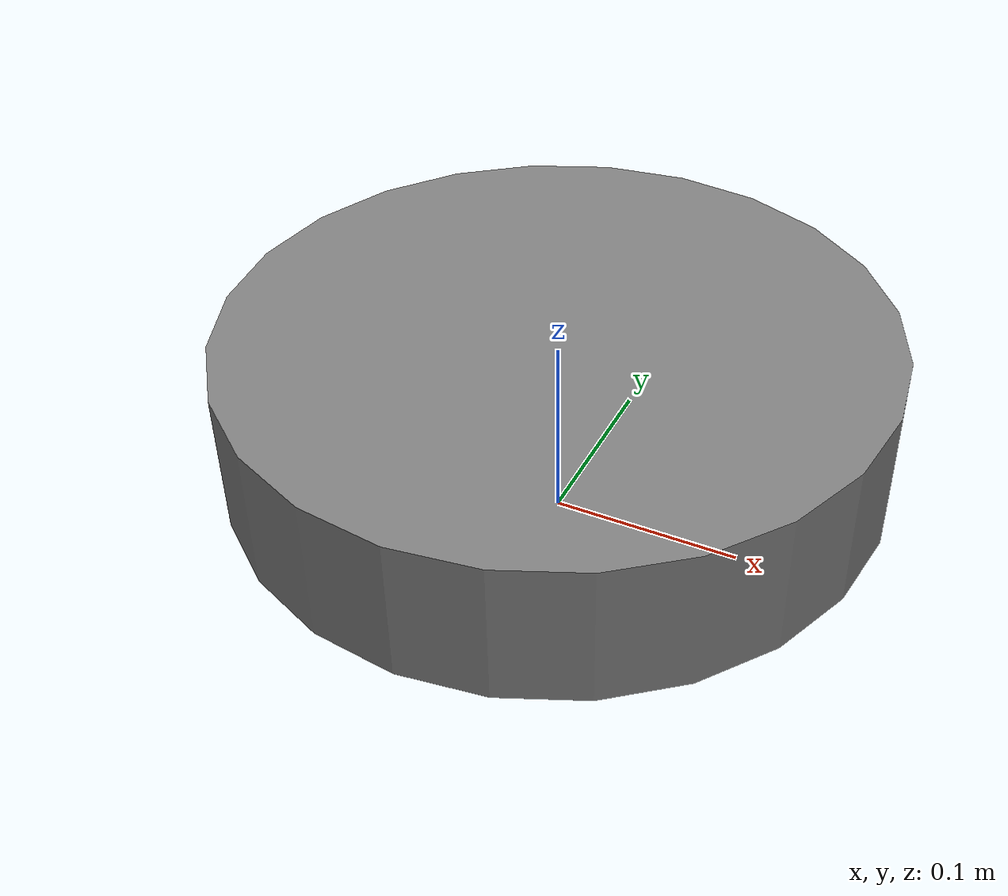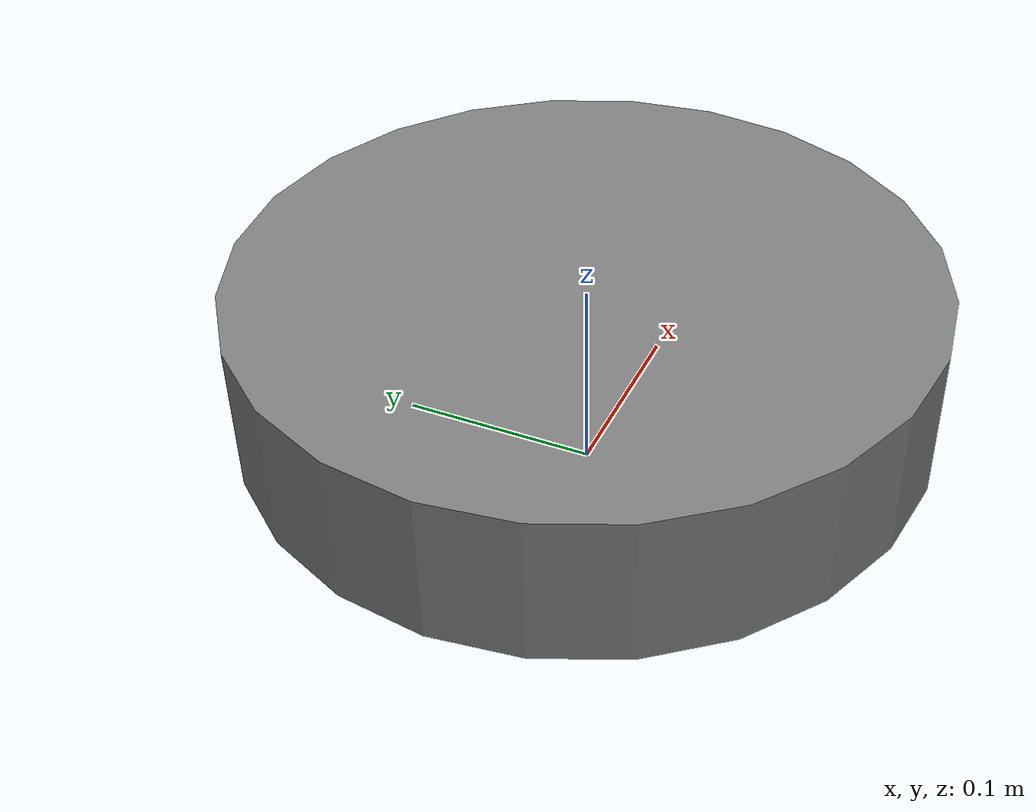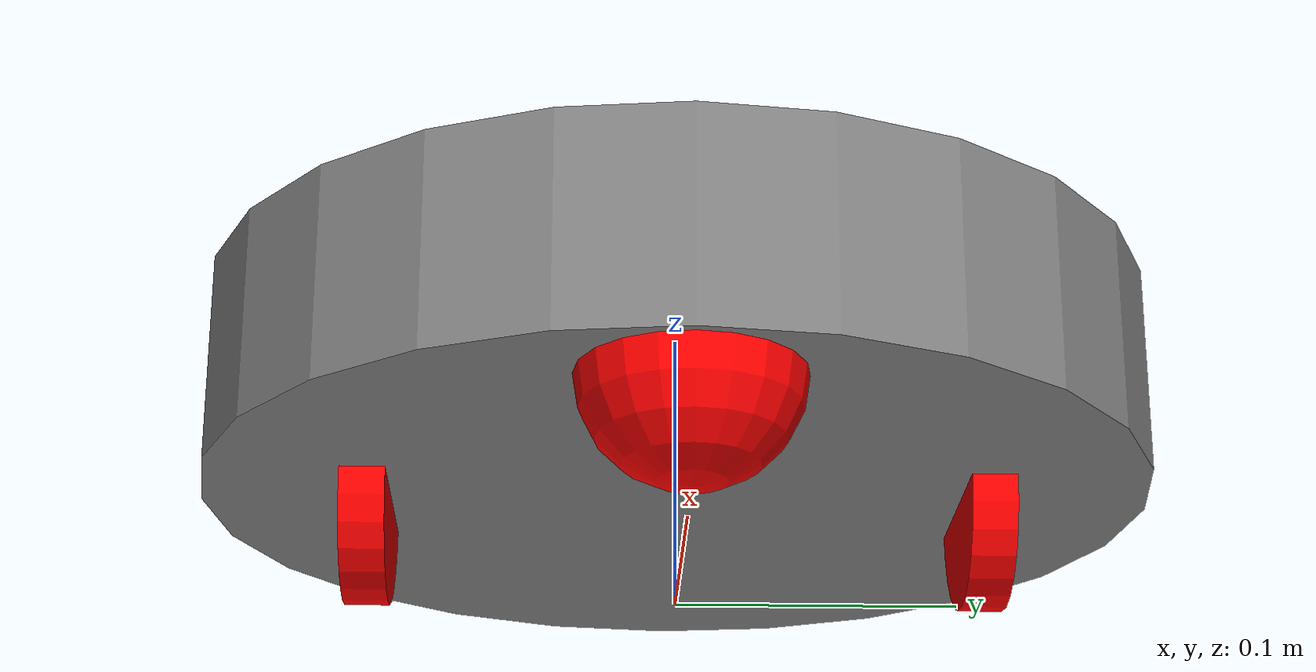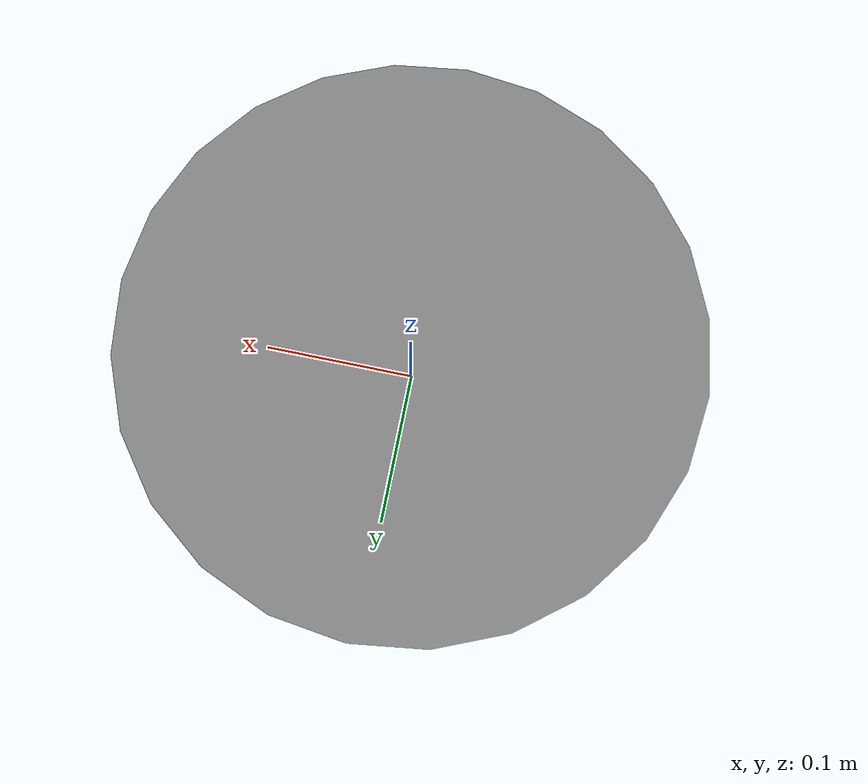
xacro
<?xml version="1.0"?>
<robot xmlns:xacro="http://www.ros.org/wiki/xacro" name="roomba_891">

    <link name="world"></link>

    <xacro:include filename="drivebase.xacro"/>

    <joint name="base_joint" type="fixed">
        <origin xyz="0.0 0.0 ${wheel_radius}" rpy="0.0 0.0 0.0"/>
        <parent link="world"/>
        <child link="chassis_link"/>
    </joint>
</robot>

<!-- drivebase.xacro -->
<robot xmlns:xacro="http://www.ros.org/wiki/xacro">
    <xacro:include filename="dimensions.xacro"/>
    <xacro:include filename="materials.xacro"/>
    <xacro:include filename="macros.xacro"/>
    <xacro:include filename="gazebo.xacro"/>

    <link name="chassis_link">
        <visual>
            <origin xyz="0.0 0.0 0.0375"/>
            <geometry>
                <cylinder radius="${chassis_radius}" length="${chassis_height}"/>
            </geometry>
            <material name="grey"/>
        </visual>
        <collision>
            <origin xyz="0.0 0.0 0.0375"/>
            <geometry>
                <cylinder radius="${chassis_radius}" length="${chassis_height}"/>
            </geometry>
        </collision>
        <inertial>
            <mass value="2.95"/>
            <xacro:solid_cylinder_inertia m="2.95" r="${chassis_radius}" h="${chassis_height}"/>
        </inertial>
    </link>

    <link name="left_wheel">
        <visual>
            <origin xyz="0.0 0.0 0.0"/>
            <geometry>
                <cylinder radius="${wheel_radius}" length="${wheel_thickness}"/>
            </geometry>
            <material name="red"/>
        </visual>
        <collision>
            <geometry>
                <cylinder radius="${wheel_radius}" length="${wheel_thickness}"/>
            </geometry>
        </collision>
        <inertial>
            <mass value="0.226796"/>
            <xacro:solid_cylinder_inertia m="0.226796" r="${wheel_radius}" h="${wheel_thickness}"/>
        </inertial>
    </link>

    <link name="right_wheel">
        <visual>
            <origin xyz="0.0 0.0 0.0"/>
            <geometry>
                <cylinder radius="${wheel_radius}" length="${wheel_thickness}"/>
            </geometry>
            <material name="red"/>
        </visual>
        <collision>
            <geometry>
                <cylinder radius="${wheel_radius}" length="${wheel_thickness}"/>
            </geometry>
        </collision>
        <inertial>
            <mass value="0.226796"/>
            <xacro:solid_cylinder_inertia m="0.226796" r="${wheel_radius}" h="${wheel_thickness}"/>
        </inertial>
    </link>

    <link name="caster_wheel">
        <visual>
            <origin xyz="0.0 0.0 0.0"/>
            <geometry>
                <sphere radius="${caster_radius}"/>
            </geometry>
            <material name="red"/>
        </visual>
        <collision>
            <geometry>
                <sphere radius="${caster_radius}"/>
            </geometry>
        </collision>
        <inertial>
            <mass value="0.05"/>
            <xacro:solid_sphere_inertia m="0.05" r="${caster_radius}"/>
        </inertial>
    </link>

    <joint name="caster_joint" type="continuous">
        <origin xyz="0.129 0.0 0.0" rpy="0.0 0.0 0.0"/>

        <parent link="chassis_link"/>
        <child link="caster_wheel"/>

        <axis xyz="0.0 1.0 0.0"/>
    </joint>

    <joint name="left_wheel_joint" type="continuous">
        <origin xyz="0.0 ${wheel_offset} 0.0" rpy="${pi/2} 0.0 0.0"/>
        <parent link="chassis_link"/>
        <child link="left_wheel"/>
        <axis xyz="0.0 0.0 -1.0"/>
    </joint>

    <joint name="right_wheel_joint" type="continuous">
        <origin xyz="0.0 -${wheel_offset} 0.0" rpy="${pi/2} 0.0 0.0"/>
        <parent link="chassis_link"/>
        <child link="right_wheel"/>
        <axis xyz="0.0 0.0 -1.0"/>
    </joint>
</robot>

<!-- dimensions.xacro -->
<robot xmlns:xacro="http://www.ros.org/wiki/xacro">
    <xacro:property name="chassis_radius" value="0.170"/>
    <xacro:property name="chassis_height" value="0.075"/>
    <xacro:property name="wheel_radius" value="0.0375"/>
    <xacro:property name="wheel_thickness" value="0.016"/>
    <xacro:property name="caster_radius" value="0.0375"/>
    <xacro:property name="wheel_offset" value="0.110"/>
</robot>

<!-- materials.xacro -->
<robot xmlns:xacro="http://www.ros.org/wiki/xacro">
    <material name="red">
        <color rgba="1.0 0.0 0.0 1.0"/>
    </material>
    <material name="green">
        <color rgba="0.0 1.0 0.0 1.0"/>
    </material>
    <material name="blue">
        <color rgba="0.0 0.0 1.0 1.0"/>
    </material>
    <material name="yellow">
        <color rgba="1.0 1.0 0.0 1.0"/>
    </material>
    <material name="black">
        <color rgba="0.0 0.0 0.0 1.0"/>
    </material>
    <material name="white">
        <color rgba="1.0 1.0 1.0 1.0"/>
    </material>
    <material name="grey">
        <color rgba="0.5 0.5 0.5 1.0"/>
    </material>
    <material name="dark_grey">
        <color rgba="0.25 0.25 0.25 1.0"/>
    </material>
    <material name="light_grey">
        <color rgba="0.75 0.75 0.75 1.0"/>
    </material>
    <material name="orange">
        <color rgba="1.0 0.5 0.0 1.0"/>
    </material>
</robot>

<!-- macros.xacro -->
<robot xmlns:xacro="http://wiki.ros.org/xacro">
  <!-- source en.wikipedia.org/wiki/List_of_moments_of_inertia-->

  <!-- TODO Solid sphere of radius r and mass m-->
  <xacro:macro name="solid_sphere_inertia" params="m r">
    <inertia  ixx="${(2*r*r*m)/5}" ixy = "0" ixz = "0"
              iyy="${(2*r*r*m)/5}" iyz = "0"
              izz="${(2*r*r*m)/5}"
     />
  </xacro:macro>

  <!-- TODO Hollow sphere of radius r and mass m-->
  <xacro:macro name="solid_sphere_inertia" params="m r">
    <inertia  ixx="${(2*r*r*m)/3}" ixy = "0" ixz = "0"
              iyy="${(2*r*r*m)/3}" iyz = "0"
              izz="${(2*r*r*m)/3}"
     />
  </xacro:macro>

  <!-- TODO Solid ellipsoid of semi-axes a, b, c and mass m-->
  <xacro:macro name="ellipsoid_semi_axes_inertia" params="a b c m r">
    <inertia  ixx="${(m*(b*b+c*c))/5}" ixy = "0" ixz = "0"
              iyy="${(m*(a*a+c*c))/5}" iyz = "0"
              izz="${(m*(a*a+b*b))/5}"
     />
  </xacro:macro>

  <!-- TODO Right circular cone with radius r, height h and mass m, about the apex -->
  <xacro:macro name="right_circular_cone_inertia" params="m r h">
    <inertia  ixx="${((3*m*(h*h))/5)+((3*m*(r*r))/20)}" ixy = "0" ixz = "0"
              iyy="${((3*m*(h*h))/5)+((3*m*(r*r))/20)}" iyz = "0"
              izz="${(3*m*(r*r))/10}"
     />
  </xacro:macro>

  <!-- TODO Solid cuboid of width w, height h, depth d, and mass m -->
  <!-- yes, axis in solid_cuboid_inertia are changed, w relates to X axis, d to Z axis, and h to Y axis -->
  <!-- Keep this comment -->
  <xacro:macro name="solid_cuboid_inertia" params="m h d w">
    <inertia  ixx="${(m*(h*h+d*d))/12}" ixy = "0" ixz = "0"
              iyy="${(m*(w*w+d*d))/12}" iyz = "0"
              izz="${(m*(w*w+h*h))/12}"
     />
  </xacro:macro>

  <!-- TODO Solid cylinder of radius r, height h and mass m -->
  <xacro:macro name="solid_cylinder_inertia" params="m r h">
    <inertia  ixx="${m*(3*r*r+h*h)/12}" ixy = "0" ixz = "0"
              iyy="${m*(3*r*r+h*h)/12}" iyz = "0"
              izz="${m*r*r/2}"
     />
  </xacro:macro>

    <!-- TODO Thick-walled cylindrical tube with open ends, of inner radius r1, outer radius r2, length h and mass m -->
    <xacro:macro name="thick_walled_cylinder_inertia" params="m r1 r2 h">
    <inertia  ixx="${m*((3*(r1*r1+r2*r2))+(h*h))/12}" ixy = "0" ixz = "0"
              iyy="${m*((3*(r1*r1+r2*r2))+(h*h))/12}" iyz = "0"
              izz="${m*(r1*r1+r2*r2)/2}"
     />
  </xacro:macro>

</robot>
